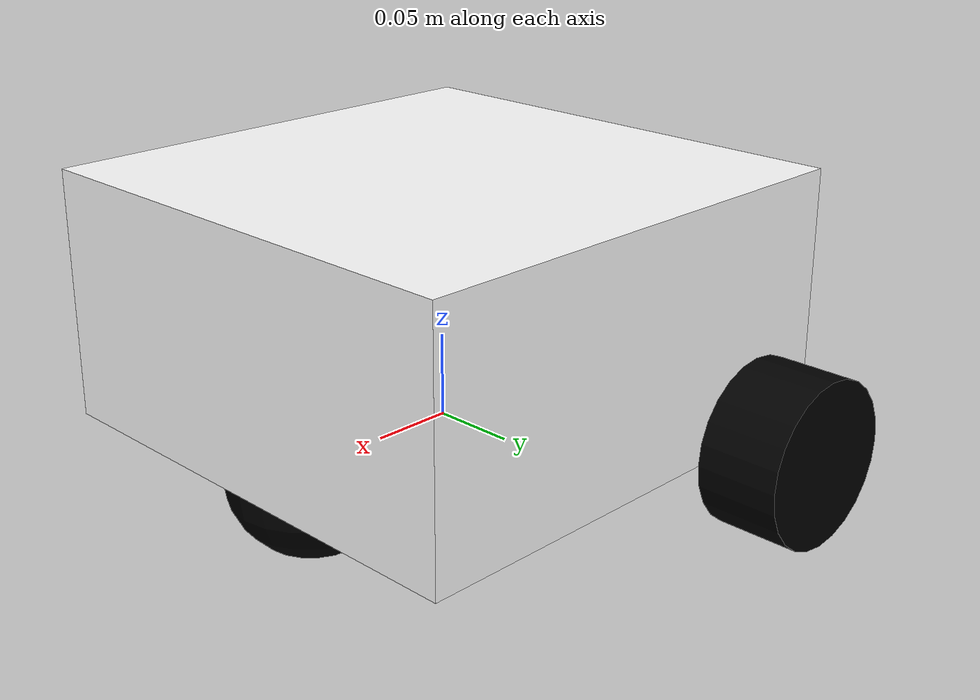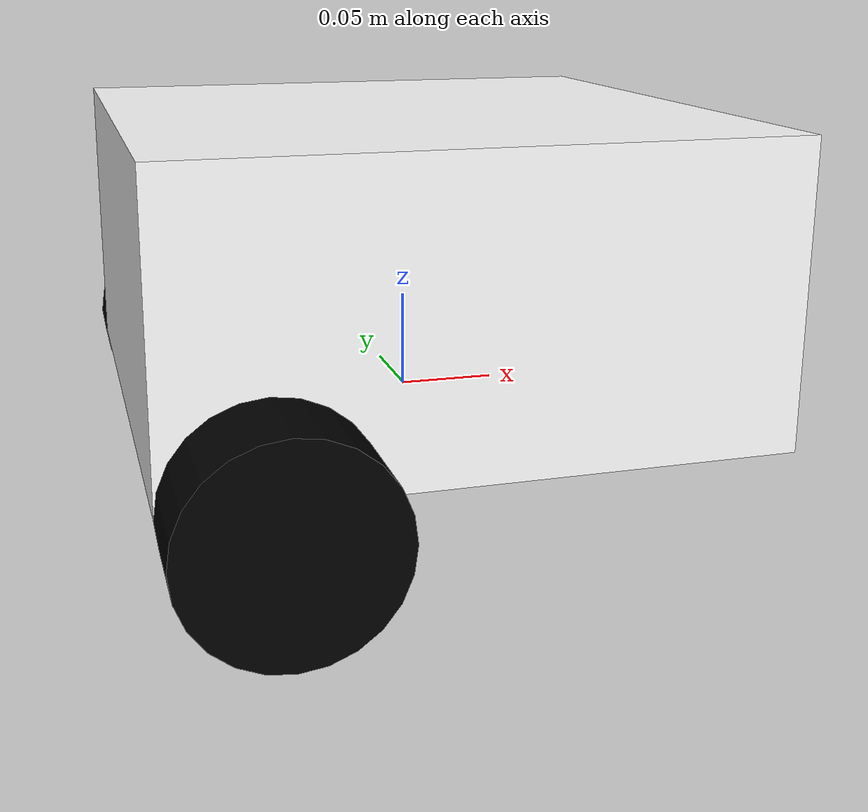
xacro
<?xml version="1.0"?>
<robot xmlns:xacro="http://www.ros.org/wiki/xacro">

    <xacro:include filename="inertial_macros.xacro"/>

    <material name="black">
        <color rgba="0 0 0 1"/>
    </material>

    <material name="white">
        <color rgba="1 1 1 1"/>
    </material>

    <material name="orange">
        <color rgba="0.5 0.5 0 1"/>
    </material>

    <material name="blue">
        <color rgba="0 0 1 1"/>
    </material>

    <material name="green">
        <color rgba="0 1 0 1"/>
    </material>

    <link name="base_link"></link>
    <joint name="chassis_joint" type="fixed"> <!-- joint定义的xyz值描述的是如何从父link的坐标系移动到子link的坐标系，xyz值表示子link的原点相对于父link原点的位置 -->
        <parent link="base_link"/>
        <child link="chassis_link"/>
        <origin xyz="-0.1 0 0"/> <!-- 在base_link坐标系下定义关节中心点的xyz坐标位置，方便底盘、轮子的中心点与这个关节连接-->
    </joint>

    <link name="chassis_link">
        <visual>
            <geometry>
                <box size="0.3 0.3 0.15"/> <!-- 长宽高 -->
            </geometry>
            <material name="white"/>
            <origin xyz="0.1 0 0.075"/>
        </visual>
        <collision> <!-- collision标签用于描述碰撞检测的形状，通常和visual标签中的形状一致，但是collision标签中的形状不会被渲染,通常应该保留 origin 标签 -->
            <geometry>
                <box size="0.3 0.3 0.15"/>
            </geometry>
            <origin xyz="0.1 0 0.075"/>
        </collision>
        <xacro:inertial_box mass="0.5" x="0.3" y="0.3" z="0.15"> <!-- 引用惯性标签-->
            <origin xyz="0.1 0 0.075"/>
        </xacro:inertial_box>
    </link>

    <gazebo reference="chassis_link">
        <material>Gazebo/White</material>
    </gazebo>

    <joint name="left_wheel_joint" type="continuous"> <!-- chassis和wheel都以base_link为父坐标，当然wheel也可以以chassis为父连接，选择base_link减少了层级结构，使URDF或类似文件更加简洁 -->
        <parent link="base_link"/>
        <child link="left_wheel_link"/>
        <origin xyz="-0.1 0.175 0"  rpy="-${pi/2} 0 0"/>   <!-- 需要旋转坐标调整位姿的情况，也可以用link origin来替换，添加axis只能在joint内, 旋转方向不可以相反，joint_state控制轮子运动的方向相反 -->
        <axis xyz="0 0 1"/> <!-- 旋转轴，仅存在于joint标签内 -->
    </joint>

    <link name="left_wheel_link">
        <visual>
            <geometry>
                <cylinder radius="0.05" length="0.05"/>  <!-- 半径 高度 -->
            </geometry>
            <material name="black"/>
        </visual>
        <collision>
            <geometry>
                <cylinder radius="0.05" length="0.05"/>  <!-- 半径 高度 -->
            </geometry>
            <material name="black"/>
        </collision>
        <xacro:inertial_cylinder mass="0.1" radius="0.05" length="0.05">
            <origin xyz="0 0 0" rpy="0 0 0"/>
        </xacro:inertial_cylinder>
    </link>

    <gazebo reference="left_wheel_link">
        <material>Gazebo/Blue</material>
    </gazebo>

    <joint name="right_wheel_joint" type="continuous">
        <parent link="base_link"/>
        <child link="right_wheel_link"/>
        <origin xyz="-0.1 -0.175 0"  rpy="-${pi/2} 0 0"/>   <!-- 需要和left wheel旋转方向相反吗？哪怕结果一样也必须按照相反的方向旋转？ -->
        <axis xyz="0 0 1"/>
    </joint>

    <link name="right_wheel_link">
        <visual>
            <geometry>
                <cylinder radius="0.05" length="0.05"/>
            </geometry>
            <material name="black"/>
        </visual>
        <collision>
            <geometry>
                <cylinder radius="0.05" length="0.05"/>
            </geometry>
            <material name="black"/>
        </collision>
        <xacro:inertial_cylinder mass="0.1" radius="0.05" length="0.05">
            <origin xyz="0 0 0" rpy="0 0 0"/>
        </xacro:inertial_cylinder>
    </link>  <!-- 在rivz2种，这个机器人底座紧贴着grid上，轮子都嵌入进grid了，是不影响这个移动小车的功能使用吗？完全可以调节grid的高度？还是说是有问题的？-->

    <gazebo reference="right_wheel_link">
        <material>Gazebo/Blue</material>
    </gazebo>

    <joint name="caster_wheel_joint" type="fixed">
        <parent link="base_link"/>
        <child link="caster_wheel_link"/>
        <origin xyz="0.1 0 0"/>
    </joint>

    <link name="caster_wheel_link">
        <visual>
            <geometry>
                <sphere radius="0.05"/>
            </geometry>
            <material name="black"/>
        </visual>
        <collision>
            <geometry>
                <sphere radius="0.05"/>
            </geometry>
            <material name="black"/>
        </collision>
        <xacro:inertial_sphere mass="0.1" radius="0.05">
            <origin xyz="0 0 0" rpy="0 0 0"/>
        </xacro:inertial_sphere>
    </link>

    <gazebo reference="caster_wheel_link">
        <material>Gazebo/Black</material>
        <mu1 value="0.001"/>
        <mu2 value="0.001"/>
    </gazebo>
</robot>
